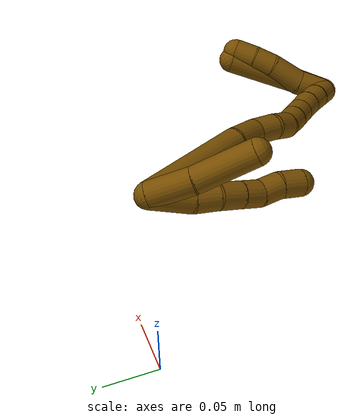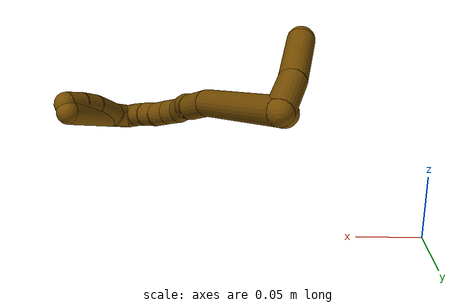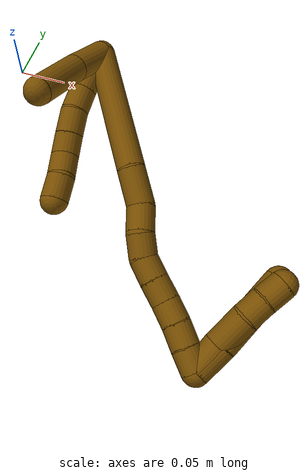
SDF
<sdf version="1.7">
 <world name="default">
  <model name="photoneo_s_sensor">
   <static>1</static>
   <pose>0 0 2 1.57079 1.57079 3.14159</pose>
   <link name="link">
    <inertial><mass>0.1</mass></inertial>
    <sensor name="sensor" type="depth">
     <update_rate>30</update_rate>
     <camera>
      <horizontal_fov>1.22</horizontal_fov>
      <image><width>1920</width><height>1200</height><format>B8G8R8</format></image>
      <clip><near>0.1</near><far>4</far></clip>
      <depth_camera><output>points</output></depth_camera>
     </camera>
     <plugin name="camera_plugin" filename="libgazebo_ros_depth_camera.so">
      <baseline>0.2</baseline>
      <alwaysOn>1</alwaysOn>
      <updateRate>0.0</updateRate>
      <cameraName>camera_ir</cameraName>
      <imageTopicName>/camera/color/image_raw</imageTopicName>
      <cameraInfoTopicName>/camera/color/camera_info</cameraInfoTopicName>
      <depthImageTopicName>/camera/depth/image_raw</depthImageTopicName>
      <depthImageCameraInfoTopicName>/camera/depth/camera_info</depthImageCameraInfoTopicName>
      <pointCloudTopicName>/camera/depth/points</pointCloudTopicName>
      <frameName>fr_optical</frameName>
      <pointCloudCutoff>0.1</pointCloudCutoff>
      <pointCloudCutoffMax>2.0</pointCloudCutoffMax>
      <distortionK1>0</distortionK1>
      <distortionK2>0</distortionK2>
      <distortionK3>0</distortionK3>
      <distortionT1>0</distortionT1>
      <distortionT2>0</distortionT2>
      <CxPrime>0</CxPrime>
      <Cx>0</Cx>
      <Cy>0</Cy>
      <focalLength>0</focalLength>
      <hackBaseline>0</hackBaseline>
     </plugin>
    </sensor>
   </link>
  </model>
  <model name="bin">
   <static>1</static>
   <link name="bottom">
    <collision name="collision-bottom">
     <pose>0 0 -0.01 0 -0 0</pose>
     <geometry><box><size>0.8 0.6 0.02</size></box></geometry>
     <surface>
      <friction><ode><mu>100</mu><mu2>100</mu2></ode></friction>
      <contact><collide_bitmask>65535</collide_bitmask></contact>
     </surface>
    </collision>
   </link>
   <link name="west_wall">
    <collision name="collision-west_wall">
     <pose>-0.41 0 0.1 0 -0 0</pose>
     <geometry><box><size>0.02 0.6 0.2</size></box></geometry>
     <surface>
      <friction><ode><mu>100</mu><mu2>100</mu2></ode></friction>
      <contact><collide_bitmask>65535</collide_bitmask></contact>
     </surface>
    </collision>
   </link>
   <link name="east_wall">
    <collision name="collision-east_wall">
     <pose>0.41 0 0.1 0 -0 0</pose>
     <geometry><box><size>0.02 0.6 0.2</size></box></geometry>
     <surface>
      <friction><ode><mu>100</mu><mu2>100</mu2></ode></friction>
      <contact><collide_bitmask>65535</collide_bitmask></contact>
     </surface>
    </collision>
   </link>
   <link name="south_wall">
    <collision name="collision-south_wall">
     <pose>0 -0.31 0.1 0 -0 0</pose>
     <geometry><box><size>0.8 0.02 0.2</size></box></geometry>
     <surface>
      <friction><ode><mu>100</mu><mu2>100</mu2></ode></friction>
      <contact><collide_bitmask>65535</collide_bitmask></contact>
     </surface>
    </collision>
   </link>
   <link name="north_wall">
    <collision name="collision-north_wall">
     <pose>0 0.31 0.1 0 -0 0</pose>
     <geometry><box><size>0.8 0.02 0.2</size></box></geometry>
     <surface>
      <friction><ode><mu>100</mu><mu2>100</mu2></ode></friction>
      <contact><collide_bitmask>65535</collide_bitmask></contact>
     </surface>
    </collision>
   </link>
  </model>
  <model name="12">
   <static>0</static>
   <link name="12">
    <collision name="collision-cylinder-e_1_2_8">
     <pose>-0.014221 -0.001218 0.014028 0.086586 -0.790366 -0.036136</pose>
     <geometry><cylinder><radius>0.0125</radius><length>0.040025</length></cylinder></geometry>
     <surface>
      <friction><ode><mu>1.16</mu><mu2>1.16</mu2><slip1>0</slip1><slip2>0</slip2></ode></friction>
      <contact><ode><kp>1e+06</kp><kd>1</kd><max_vel>0</max_vel><min_depth>0.001</min_depth></ode></contact>
     </surface>
    </collision>
    <visual name="visual-cylinder-e_1_2_8">
     <pose>-0.014221 -0.001218 0.014028 0.086586 -0.790366 -0.036136</pose>
     <geometry><cylinder><radius>0.0125</radius><length>0.040025</length></cylinder></geometry>
     <material><ambient>0.466667 0.301961 0 1</ambient></material>
    </visual>
    <collision name="collision-cylinder-e_2_8_9">
     <pose>-0.035022 -0.004485 0.037307 0.217983 -0.606935 -0.068504</pose>
     <geometry><cylinder><radius>0.0125</radius><length>0.023074</length></cylinder></geometry>
     <surface>
      <friction><ode><mu>1.16</mu><mu2>1.16</mu2><slip1>0</slip1><slip2>0</slip2></ode></friction>
      <contact><ode><kp>1e+06</kp><kd>1</kd><max_vel>0</max_vel><min_depth>0.001</min_depth></ode></contact>
     </surface>
    </collision>
    <visual name="visual-cylinder-e_2_8_9">
     <pose>-0.035022 -0.004485 0.037307 0.217983 -0.606935 -0.068504</pose>
     <geometry><cylinder><radius>0.0125</radius><length>0.023074</length></cylinder></geometry>
     <material><ambient>0.466667 0.301961 0 1</ambient></material>
    </visual>
    <collision name="collision-cylinder-e_3_9_10">
     <pose>-0.049155 -0.010037 0.054552 0.4131 -0.713434 -0.155856</pose>
     <geometry><cylinder><radius>0.0125</radius><length>0.023083</length></cylinder></geometry>
     <surface>
      <friction><ode><mu>1.16</mu><mu2>1.16</mu2><slip1>0</slip1><slip2>0</slip2></ode></friction>
      <contact><ode><kp>1e+06</kp><kd>1</kd><max_vel>0</max_vel><min_depth>0.001</min_depth></ode></contact>
     </surface>
    </collision>
    <visual name="visual-cylinder-e_3_9_10">
     <pose>-0.049155 -0.010037 0.054552 0.4131 -0.713434 -0.155856</pose>
     <geometry><cylinder><radius>0.0125</radius><length>0.023083</length></cylinder></geometry>
     <material><ambient>0.466667 0.301961 0 1</ambient></material>
    </visual>
    <collision name="collision-cylinder-e_4_10_11">
     <pose>-0.063501 -0.016859 0.069298 0.456667 -0.734271 -0.178265</pose>
     <geometry><cylinder><radius>0.0125</radius><length>0.020274</length></cylinder></geometry>
     <surface>
      <friction><ode><mu>1.16</mu><mu2>1.16</mu2><slip1>0</slip1><slip2>0</slip2></ode></friction>
      <contact><ode><kp>1e+06</kp><kd>1</kd><max_vel>0</max_vel><min_depth>0.001</min_depth></ode></contact>
     </surface>
    </collision>
    <visual name="visual-cylinder-e_4_10_11">
     <pose>-0.063501 -0.016859 0.069298 0.456667 -0.734271 -0.178265</pose>
     <geometry><cylinder><radius>0.0125</radius><length>0.020274</length></cylinder></geometry>
     <material><ambient>0.466667 0.301961 0 1</ambient></material>
    </visual>
    <collision name="collision-cylinder-e_5_11_12">
     <pose>-0.074533 -0.023961 0.085048 0.398178 -0.409847 -0.08382</pose>
     <geometry><cylinder><radius>0.0125</radius><length>0.021281</length></cylinder></geometry>
     <surface>
      <friction><ode><mu>1.16</mu><mu2>1.16</mu2><slip1>0</slip1><slip2>0</slip2></ode></friction>
      <contact><ode><kp>1e+06</kp><kd>1</kd><max_vel>0</max_vel><min_depth>0.001</min_depth></ode></contact>
     </surface>
    </collision>
    <visual name="visual-cylinder-e_5_11_12">
     <pose>-0.074533 -0.023961 0.085048 0.398178 -0.409847 -0.08382</pose>
     <geometry><cylinder><radius>0.0125</radius><length>0.021281</length></cylinder></geometry>
     <material><ambient>0.466667 0.301961 0 1</ambient></material>
    </visual>
    <collision name="collision-cylinder-e_6_12_6">
     <pose>-0.085569 -0.030631 0.102375 0.333472 -0.656677 -0.114543</pose>
     <geometry><cylinder><radius>0.0125</radius><length>0.022264</length></cylinder></geometry>
     <surface>
      <friction><ode><mu>1.16</mu><mu2>1.16</mu2><slip1>0</slip1><slip2>0</slip2></ode></friction>
      <contact><ode><kp>1e+06</kp><kd>1</kd><max_vel>0</max_vel><min_depth>0.001</min_depth></ode></contact>
     </surface>
    </collision>
    <visual name="visual-cylinder-e_6_12_6">
     <pose>-0.085569 -0.030631 0.102375 0.333472 -0.656677 -0.114543</pose>
     <geometry><cylinder><radius>0.0125</radius><length>0.022264</length></cylinder></geometry>
     <material><ambient>0.466667 0.301961 0 1</ambient></material>
    </visual>
    <collision name="collision-cylinder-e_1_2_13">
     <pose>-0.002683 0.004203 0.020321 -0.203955 -0.128582 0.013176</pose>
     <geometry><cylinder><radius>0.0125</radius><length>0.041847</length></cylinder></geometry>
     <surface>
      <friction><ode><mu>1.16</mu><mu2>1.16</mu2><slip1>0</slip1><slip2>0</slip2></ode></friction>
      <contact><ode><kp>1e+06</kp><kd>1</kd><max_vel>0</max_vel><min_depth>0.001</min_depth></ode></contact>
     </surface>
    </collision>
    <visual name="visual-cylinder-e_1_2_13">
     <pose>-0.002683 0.004203 0.020321 -0.203955 -0.128582 0.013176</pose>
     <geometry><cylinder><radius>0.0125</radius><length>0.041847</length></cylinder></geometry>
     <material><ambient>0.466667 0.301961 0 1</ambient></material>
    </visual>
    <collision name="collision-cylinder-e_2_13_5">
     <pose>-0.00737 0.011368 0.069497 -0.102277 -0.068982 0.003532</pose>
     <geometry><cylinder><radius>0.0125</radius><length>0.058153</length></cylinder></geometry>
     <surface>
      <friction><ode><mu>1.16</mu><mu2>1.16</mu2><slip1>0</slip1><slip2>0</slip2></ode></friction>
      <contact><ode><kp>1e+06</kp><kd>1</kd><max_vel>0</max_vel><min_depth>0.001</min_depth></ode></contact>
     </surface>
    </collision>
    <visual name="visual-cylinder-e_2_13_5">
     <pose>-0.00737 0.011368 0.069497 -0.102277 -0.068982 0.003532</pose>
     <geometry><cylinder><radius>0.0125</radius><length>0.058153</length></cylinder></geometry>
     <material><ambient>0.466667 0.301961 0 1</ambient></material>
    </visual>
    <collision name="collision-cylinder-e_1_2_14">
     <pose>-0.023705 -0.039793 0.038799 0.798039 -0.40316 -0.171903</pose>
     <geometry><cylinder><radius>0.0125</radius><length>0.120842</length></cylinder></geometry>
     <surface>
      <friction><ode><mu>1.16</mu><mu2>1.16</mu2><slip1>0</slip1><slip2>0</slip2></ode></friction>
      <contact><ode><kp>1e+06</kp><kd>1</kd><max_vel>0</max_vel><min_depth>0.001</min_depth></ode></contact>
     </surface>
    </collision>
    <visual name="visual-cylinder-e_1_2_14">
     <pose>-0.023705 -0.039793 0.038799 0.798039 -0.40316 -0.171903</pose>
     <geometry><cylinder><radius>0.0125</radius><length>0.120842</length></cylinder></geometry>
     <material><ambient>0.466667 0.301961 0 1</ambient></material>
    </visual>
    <collision name="collision-cylinder-e_2_14_15">
     <pose>-0.056014 -0.091124 0.086494 0.913985 -0.533449 -0.267105</pose>
     <geometry><cylinder><radius>0.0125</radius><length>0.033842</length></cylinder></geometry>
     <surface>
      <friction><ode><mu>1.16</mu><mu2>1.16</mu2><slip1>0</slip1><slip2>0</slip2></ode></friction>
      <contact><ode><kp>1e+06</kp><kd>1</kd><max_vel>0</max_vel><min_depth>0.001</min_depth></ode></contact>
     </surface>
    </collision>
    <visual name="visual-cylinder-e_2_14_15">
     <pose>-0.056014 -0.091124 0.086494 0.913985 -0.533449 -0.267105</pose>
     <geometry><cylinder><radius>0.0125</radius><length>0.033842</length></cylinder></geometry>
     <material><ambient>0.466667 0.301961 0 1</ambient></material>
    </visual>
    <collision name="collision-cylinder-e_3_15_16">
     <pose>-0.070877 -0.107881 0.103895 0.550357 -0.560203 -0.162083</pose>
     <geometry><cylinder><radius>0.0125</radius><length>0.023556</length></cylinder></geometry>
     <surface>
      <friction><ode><mu>1.16</mu><mu2>1.16</mu2><slip1>0</slip1><slip2>0</slip2></ode></friction>
      <contact><ode><kp>1e+06</kp><kd>1</kd><max_vel>0</max_vel><min_depth>0.001</min_depth></ode></contact>
     </surface>
    </collision>
    <visual name="visual-cylinder-e_3_15_16">
     <pose>-0.070877 -0.107881 0.103895 0.550357 -0.560203 -0.162083</pose>
     <geometry><cylinder><radius>0.0125</radius><length>0.023556</length></cylinder></geometry>
     <material><ambient>0.466667 0.301961 0 1</ambient></material>
    </visual>
    <collision name="collision-cylinder-e_4_16_17">
     <pose>-0.084012 -0.119336 0.117679 0.868385 -0.699543 -0.335119</pose>
     <geometry><cylinder><radius>0.0125</radius><length>0.02136</length></cylinder></geometry>
     <surface>
      <friction><ode><mu>1.16</mu><mu2>1.16</mu2><slip1>0</slip1><slip2>0</slip2></ode></friction>
      <contact><ode><kp>1e+06</kp><kd>1</kd><max_vel>0</max_vel><min_depth>0.001</min_depth></ode></contact>
     </surface>
    </collision>
    <visual name="visual-cylinder-e_4_16_17">
     <pose>-0.084012 -0.119336 0.117679 0.868385 -0.699543 -0.335119</pose>
     <geometry><cylinder><radius>0.0125</radius><length>0.02136</length></cylinder></geometry>
     <material><ambient>0.466667 0.301961 0 1</ambient></material>
    </visual>
    <collision name="collision-cylinder-e_5_17_18">
     <pose>-0.094813 -0.133721 0.127367 1.07483 -0.400681 -0.240849</pose>
     <geometry><cylinder><radius>0.0125</radius><length>0.020121</length></cylinder></geometry>
     <surface>
      <friction><ode><mu>1.16</mu><mu2>1.16</mu2><slip1>0</slip1><slip2>0</slip2></ode></friction>
      <contact><ode><kp>1e+06</kp><kd>1</kd><max_vel>0</max_vel><min_depth>0.001</min_depth></ode></contact>
     </surface>
    </collision>
    <visual name="visual-cylinder-e_5_17_18">
     <pose>-0.094813 -0.133721 0.127367 1.07483 -0.400681 -0.240849</pose>
     <geometry><cylinder><radius>0.0125</radius><length>0.020121</length></cylinder></geometry>
     <material><ambient>0.466667 0.301961 0 1</ambient></material>
    </visual>
    <collision name="collision-cylinder-e_6_18_19">
     <pose>-0.102575 -0.150311 0.135846 1.12147 -0.388677 -0.245951</pose>
     <geometry><cylinder><radius>0.0125</radius><length>0.020256</length></cylinder></geometry>
     <surface>
      <friction><ode><mu>1.16</mu><mu2>1.16</mu2><slip1>0</slip1><slip2>0</slip2></ode></friction>
      <contact><ode><kp>1e+06</kp><kd>1</kd><max_vel>0</max_vel><min_depth>0.001</min_depth></ode></contact>
     </surface>
    </collision>
    <visual name="visual-cylinder-e_6_18_19">
     <pose>-0.102575 -0.150311 0.135846 1.12147 -0.388677 -0.245951</pose>
     <geometry><cylinder><radius>0.0125</radius><length>0.020256</length></cylinder></geometry>
     <material><ambient>0.466667 0.301961 0 1</ambient></material>
    </visual>
    <collision name="collision-cylinder-e_7_19_20">
     <pose>-0.109651 -0.166735 0.144999 1.00392 -0.329713 -0.182115</pose>
     <geometry><cylinder><radius>0.0125</radius><length>0.020002</length></cylinder></geometry>
     <surface>
      <friction><ode><mu>1.16</mu><mu2>1.16</mu2><slip1>0</slip1><slip2>0</slip2></ode></friction>
      <contact><ode><kp>1e+06</kp><kd>1</kd><max_vel>0</max_vel><min_depth>0.001</min_depth></ode></contact>
     </surface>
    </collision>
    <visual name="visual-cylinder-e_7_19_20">
     <pose>-0.109651 -0.166735 0.144999 1.00392 -0.329713 -0.182115</pose>
     <geometry><cylinder><radius>0.0125</radius><length>0.020002</length></cylinder></geometry>
     <material><ambient>0.466667 0.301961 0 1</ambient></material>
    </visual>
    <collision name="collision-cylinder-e_8_20_21">
     <pose>-0.11682 -0.182289 0.155298 0.967377 -0.403998 -0.214333</pose>
     <geometry><cylinder><radius>0.0125</radius><length>0.020003</length></cylinder></geometry>
     <surface>
      <friction><ode><mu>1.16</mu><mu2>1.16</mu2><slip1>0</slip1><slip2>0</slip2></ode></friction>
      <contact><ode><kp>1e+06</kp><kd>1</kd><max_vel>0</max_vel><min_depth>0.001</min_depth></ode></contact>
     </surface>
    </collision>
    <visual name="visual-cylinder-e_8_20_21">
     <pose>-0.11682 -0.182289 0.155298 0.967377 -0.403998 -0.214333</pose>
     <geometry><cylinder><radius>0.0125</radius><length>0.020003</length></cylinder></geometry>
     <material><ambient>0.466667 0.301961 0 1</ambient></material>
    </visual>
    <collision name="collision-cylinder-e_9_21_1">
     <pose>-0.124943 -0.19768 0.165152 1.0356 -0.432058 -0.248729</pose>
     <geometry><cylinder><radius>0.0125</radius><length>0.020018</length></cylinder></geometry>
     <surface>
      <friction><ode><mu>1.16</mu><mu2>1.16</mu2><slip1>0</slip1><slip2>0</slip2></ode></friction>
      <contact><ode><kp>1e+06</kp><kd>1</kd><max_vel>0</max_vel><min_depth>0.001</min_depth></ode></contact>
     </surface>
    </collision>
    <visual name="visual-cylinder-e_9_21_1">
     <pose>-0.124943 -0.19768 0.165152 1.0356 -0.432058 -0.248729</pose>
     <geometry><cylinder><radius>0.0125</radius><length>0.020018</length></cylinder></geometry>
     <material><ambient>0.466667 0.301961 0 1</ambient></material>
    </visual>
    <collision name="collision-cylinder-e_1_1_22">
     <pose>-0.118653 -0.21026 0.160547 2.66578 0.789485 2.08731</pose>
     <geometry><cylinder><radius>0.0125</radius><length>0.029524</length></cylinder></geometry>
     <surface>
      <friction><ode><mu>1.16</mu><mu2>1.16</mu2><slip1>0</slip1><slip2>0</slip2></ode></friction>
      <contact><ode><kp>1e+06</kp><kd>1</kd><max_vel>0</max_vel><min_depth>0.001</min_depth></ode></contact>
     </surface>
    </collision>
    <visual name="visual-cylinder-e_1_1_22">
     <pose>-0.118653 -0.21026 0.160547 2.66578 0.789485 2.08731</pose>
     <geometry><cylinder><radius>0.0125</radius><length>0.029524</length></cylinder></geometry>
     <material><ambient>0.466667 0.301961 0 1</ambient></material>
    </visual>
    <collision name="collision-cylinder-e_2_22_4">
     <pose>-0.082762 -0.223641 0.128465 2.78073 0.805406 2.33241</pose>
     <geometry><cylinder><radius>0.0125</radius><length>0.070476</length></cylinder></geometry>
     <surface>
      <friction><ode><mu>1.16</mu><mu2>1.16</mu2><slip1>0</slip1><slip2>0</slip2></ode></friction>
      <contact><ode><kp>1e+06</kp><kd>1</kd><max_vel>0</max_vel><min_depth>0.001</min_depth></ode></contact>
     </surface>
    </collision>
    <visual name="visual-cylinder-e_2_22_4">
     <pose>-0.082762 -0.223641 0.128465 2.78073 0.805406 2.33241</pose>
     <geometry><cylinder><radius>0.0125</radius><length>0.070476</length></cylinder></geometry>
     <material><ambient>0.466667 0.301961 0 1</ambient></material>
    </visual>
    <collision name="collision-cylinder-e_1_1_23">
     <pose>-0.118918 -0.208555 0.160956 2.80834 0.829806 2.4121</pose>
     <geometry><cylinder><radius>0.0125</radius><length>0.027693</length></cylinder></geometry>
     <surface>
      <friction><ode><mu>1.16</mu><mu2>1.16</mu2><slip1>0</slip1><slip2>0</slip2></ode></friction>
      <contact><ode><kp>1e+06</kp><kd>1</kd><max_vel>0</max_vel><min_depth>0.001</min_depth></ode></contact>
     </surface>
    </collision>
    <visual name="visual-cylinder-e_1_1_23">
     <pose>-0.118918 -0.208555 0.160956 2.80834 0.829806 2.4121</pose>
     <geometry><cylinder><radius>0.0125</radius><length>0.027693</length></cylinder></geometry>
     <material><ambient>0.466667 0.301961 0 1</ambient></material>
    </visual>
    <collision name="collision-cylinder-e_2_23_24">
     <pose>-0.095063 -0.21574 0.145036 2.61425 1.02941 2.25089</pose>
     <geometry><cylinder><radius>0.0125</radius><length>0.031831</length></cylinder></geometry>
     <surface>
      <friction><ode><mu>1.16</mu><mu2>1.16</mu2><slip1>0</slip1><slip2>0</slip2></ode></friction>
      <contact><ode><kp>1e+06</kp><kd>1</kd><max_vel>0</max_vel><min_depth>0.001</min_depth></ode></contact>
     </surface>
    </collision>
    <visual name="visual-cylinder-e_2_23_24">
     <pose>-0.095063 -0.21574 0.145036 2.61425 1.02941 2.25089</pose>
     <geometry><cylinder><radius>0.0125</radius><length>0.031831</length></cylinder></geometry>
     <material><ambient>0.466667 0.301961 0 1</ambient></material>
    </visual>
    <collision name="collision-cylinder-e_3_24_25">
     <pose>-0.073868 -0.223335 0.132245 2.59528 0.847223 2.0297</pose>
     <geometry><cylinder><radius>0.0125</radius><length>0.020163</length></cylinder></geometry>
     <surface>
      <friction><ode><mu>1.16</mu><mu2>1.16</mu2><slip1>0</slip1><slip2>0</slip2></ode></friction>
      <contact><ode><kp>1e+06</kp><kd>1</kd><max_vel>0</max_vel><min_depth>0.001</min_depth></ode></contact>
     </surface>
    </collision>
    <visual name="visual-cylinder-e_3_24_25">
     <pose>-0.073868 -0.223335 0.132245 2.59528 0.847223 2.0297</pose>
     <geometry><cylinder><radius>0.0125</radius><length>0.020163</length></cylinder></geometry>
     <material><ambient>0.466667 0.301961 0 1</ambient></material>
    </visual>
    <collision name="collision-cylinder-e_4_25_3">
     <pose>-0.059541 -0.230823 0.120127 2.58172 0.729696 1.85117</pose>
     <geometry><cylinder><radius>0.0125</radius><length>0.020313</length></cylinder></geometry>
     <surface>
      <friction><ode><mu>1.16</mu><mu2>1.16</mu2><slip1>0</slip1><slip2>0</slip2></ode></friction>
      <contact><ode><kp>1e+06</kp><kd>1</kd><max_vel>0</max_vel><min_depth>0.001</min_depth></ode></contact>
     </surface>
    </collision>
    <visual name="visual-cylinder-e_4_25_3">
     <pose>-0.059541 -0.230823 0.120127 2.58172 0.729696 1.85117</pose>
     <geometry><cylinder><radius>0.0125</radius><length>0.020313</length></cylinder></geometry>
     <material><ambient>0.466667 0.301961 0 1</ambient></material>
    </visual>
    <collision name="collision-sphere-3">
     <pose>-0.052771 -0.234844 0.113713 0 -0 0</pose>
     <geometry><sphere><radius>0.0125</radius></sphere></geometry>
     <surface>
      <friction><ode><mu>1.16</mu><mu2>1.16</mu2><slip1>0</slip1><slip2>0</slip2></ode></friction>
      <contact><ode><kp>1e+06</kp><kd>1</kd><max_vel>0</max_vel><min_depth>0.001</min_depth></ode></contact>
     </surface>
    </collision>
    <visual name="visual-sphere-3">
     <pose>-0.052771 -0.234844 0.113713 0 -0 0</pose>
     <geometry><sphere><radius>0.0125</radius></sphere></geometry>
     <material><ambient>0.466667 0.301961 0 1</ambient></material>
    </visual>
    <collision name="collision-sphere-25">
     <pose>-0.066312 -0.226803 0.126542 0 -0 0</pose>
     <geometry><sphere><radius>0.0125</radius></sphere></geometry>
     <surface>
      <friction><ode><mu>1.16</mu><mu2>1.16</mu2><slip1>0</slip1><slip2>0</slip2></ode></friction>
      <contact><ode><kp>1e+06</kp><kd>1</kd><max_vel>0</max_vel><min_depth>0.001</min_depth></ode></contact>
     </surface>
    </collision>
    <visual name="visual-sphere-25">
     <pose>-0.066312 -0.226803 0.126542 0 -0 0</pose>
     <geometry><sphere><radius>0.0125</radius></sphere></geometry>
     <material><ambient>0.466667 0.301961 0 1</ambient></material>
    </visual>
    <collision name="collision-sphere-24">
     <pose>-0.081423 -0.219868 0.137948 0 -0 0</pose>
     <geometry><sphere><radius>0.0125</radius></sphere></geometry>
     <surface>
      <friction><ode><mu>1.16</mu><mu2>1.16</mu2><slip1>0</slip1><slip2>0</slip2></ode></friction>
      <contact><ode><kp>1e+06</kp><kd>1</kd><max_vel>0</max_vel><min_depth>0.001</min_depth></ode></contact>
     </surface>
    </collision>
    <visual name="visual-sphere-24">
     <pose>-0.081423 -0.219868 0.137948 0 -0 0</pose>
     <geometry><sphere><radius>0.0125</radius></sphere></geometry>
     <material><ambient>0.466667 0.301961 0 1</ambient></material>
    </visual>
    <collision name="collision-sphere-23">
     <pose>-0.108702 -0.211613 0.152123 0 -0 0</pose>
     <geometry><sphere><radius>0.0125</radius></sphere></geometry>
     <surface>
      <friction><ode><mu>1.16</mu><mu2>1.16</mu2><slip1>0</slip1><slip2>0</slip2></ode></friction>
      <contact><ode><kp>1e+06</kp><kd>1</kd><max_vel>0</max_vel><min_depth>0.001</min_depth></ode></contact>
     </surface>
    </collision>
    <visual name="visual-sphere-23">
     <pose>-0.108702 -0.211613 0.152123 0 -0 0</pose>
     <geometry><sphere><radius>0.0125</radius></sphere></geometry>
     <material><ambient>0.466667 0.301961 0 1</ambient></material>
    </visual>
    <collision name="collision-sphere-4">
     <pose>-0.057351 -0.232261 0.105624 0 -0 0</pose>
     <geometry><sphere><radius>0.0125</radius></sphere></geometry>
     <surface>
      <friction><ode><mu>1.16</mu><mu2>1.16</mu2><slip1>0</slip1><slip2>0</slip2></ode></friction>
      <contact><ode><kp>1e+06</kp><kd>1</kd><max_vel>0</max_vel><min_depth>0.001</min_depth></ode></contact>
     </surface>
    </collision>
    <visual name="visual-sphere-4">
     <pose>-0.057351 -0.232261 0.105624 0 -0 0</pose>
     <geometry><sphere><radius>0.0125</radius></sphere></geometry>
     <material><ambient>0.466667 0.301961 0 1</ambient></material>
    </visual>
    <collision name="collision-sphere-22">
     <pose>-0.108172 -0.215022 0.151306 0 -0 0</pose>
     <geometry><sphere><radius>0.0125</radius></sphere></geometry>
     <surface>
      <friction><ode><mu>1.16</mu><mu2>1.16</mu2><slip1>0</slip1><slip2>0</slip2></ode></friction>
      <contact><ode><kp>1e+06</kp><kd>1</kd><max_vel>0</max_vel><min_depth>0.001</min_depth></ode></contact>
     </surface>
    </collision>
    <visual name="visual-sphere-22">
     <pose>-0.108172 -0.215022 0.151306 0 -0 0</pose>
     <geometry><sphere><radius>0.0125</radius></sphere></geometry>
     <material><ambient>0.466667 0.301961 0 1</ambient></material>
    </visual>
    <collision name="collision-sphere-1">
     <pose>-0.129134 -0.205498 0.169788 0 -0 0</pose>
     <geometry><sphere><radius>0.0125</radius></sphere></geometry>
     <surface>
      <friction><ode><mu>1.16</mu><mu2>1.16</mu2><slip1>0</slip1><slip2>0</slip2></ode></friction>
      <contact><ode><kp>1e+06</kp><kd>1</kd><max_vel>0</max_vel><min_depth>0.001</min_depth></ode></contact>
     </surface>
    </collision>
    <visual name="visual-sphere-1">
     <pose>-0.129134 -0.205498 0.169788 0 -0 0</pose>
     <geometry><sphere><radius>0.0125</radius></sphere></geometry>
     <material><ambient>0.466667 0.301961 0 1</ambient></material>
    </visual>
    <collision name="collision-sphere-21">
     <pose>-0.120752 -0.189861 0.160517 0 -0 0</pose>
     <geometry><sphere><radius>0.0125</radius></sphere></geometry>
     <surface>
      <friction><ode><mu>1.16</mu><mu2>1.16</mu2><slip1>0</slip1><slip2>0</slip2></ode></friction>
      <contact><ode><kp>1e+06</kp><kd>1</kd><max_vel>0</max_vel><min_depth>0.001</min_depth></ode></contact>
     </surface>
    </collision>
    <visual name="visual-sphere-21">
     <pose>-0.120752 -0.189861 0.160517 0 -0 0</pose>
     <geometry><sphere><radius>0.0125</radius></sphere></geometry>
     <material><ambient>0.466667 0.301961 0 1</ambient></material>
    </visual>
    <collision name="collision-sphere-12">
     <pose>-0.078773 -0.027745 0.094044 0 -0 0</pose>
     <geometry><sphere><radius>0.0125</radius></sphere></geometry>
     <surface>
      <friction><ode><mu>1.16</mu><mu2>1.16</mu2><slip1>0</slip1><slip2>0</slip2></ode></friction>
      <contact><ode><kp>1e+06</kp><kd>1</kd><max_vel>0</max_vel><min_depth>0.001</min_depth></ode></contact>
     </surface>
    </collision>
    <visual name="visual-sphere-12">
     <pose>-0.078773 -0.027745 0.094044 0 -0 0</pose>
     <geometry><sphere><radius>0.0125</radius></sphere></geometry>
     <material><ambient>0.466667 0.301961 0 1</ambient></material>
    </visual>
    <collision name="collision-sphere-11">
     <pose>-0.070293 -0.020177 0.076052 0 -0 0</pose>
     <geometry><sphere><radius>0.0125</radius></sphere></geometry>
     <surface>
      <friction><ode><mu>1.16</mu><mu2>1.16</mu2><slip1>0</slip1><slip2>0</slip2></ode></friction>
      <contact><ode><kp>1e+06</kp><kd>1</kd><max_vel>0</max_vel><min_depth>0.001</min_depth></ode></contact>
     </surface>
    </collision>
    <visual name="visual-sphere-11">
     <pose>-0.070293 -0.020177 0.076052 0 -0 0</pose>
     <geometry><sphere><radius>0.0125</radius></sphere></geometry>
     <material><ambient>0.466667 0.301961 0 1</ambient></material>
    </visual>
    <collision name="collision-sphere-10">
     <pose>-0.056708 -0.013541 0.062545 0 -0 0</pose>
     <geometry><sphere><radius>0.0125</radius></sphere></geometry>
     <surface>
      <friction><ode><mu>1.16</mu><mu2>1.16</mu2><slip1>0</slip1><slip2>0</slip2></ode></friction>
      <contact><ode><kp>1e+06</kp><kd>1</kd><max_vel>0</max_vel><min_depth>0.001</min_depth></ode></contact>
     </surface>
    </collision>
    <visual name="visual-sphere-10">
     <pose>-0.056708 -0.013541 0.062545 0 -0 0</pose>
     <geometry><sphere><radius>0.0125</radius></sphere></geometry>
     <material><ambient>0.466667 0.301961 0 1</ambient></material>
    </visual>
    <collision name="collision-sphere-9">
     <pose>-0.041602 -0.006534 0.04656 0 -0 0</pose>
     <geometry><sphere><radius>0.0125</radius></sphere></geometry>
     <surface>
      <friction><ode><mu>1.16</mu><mu2>1.16</mu2><slip1>0</slip1><slip2>0</slip2></ode></friction>
      <contact><ode><kp>1e+06</kp><kd>1</kd><max_vel>0</max_vel><min_depth>0.001</min_depth></ode></contact>
     </surface>
    </collision>
    <visual name="visual-sphere-9">
     <pose>-0.041602 -0.006534 0.04656 0 -0 0</pose>
     <geometry><sphere><radius>0.0125</radius></sphere></geometry>
     <material><ambient>0.466667 0.301961 0 1</ambient></material>
    </visual>
    <collision name="collision-sphere-2">
     <geometry><sphere><radius>0.0125</radius></sphere></geometry>
     <surface>
      <friction><ode><mu>1.16</mu><mu2>1.16</mu2><slip1>0</slip1><slip2>0</slip2></ode></friction>
      <contact><ode><kp>1e+06</kp><kd>1</kd><max_vel>0</max_vel><min_depth>0.001</min_depth></ode></contact>
     </surface>
    </collision>
    <visual name="visual-sphere-2">
     <geometry><sphere><radius>0.0125</radius></sphere></geometry>
     <material><ambient>0.466667 0.301961 0 1</ambient></material>
    </visual>
    <collision name="collision-sphere-19">
     <pose>-0.106413 -0.158753 0.139917 0 -0 0</pose>
     <geometry><sphere><radius>0.0125</radius></sphere></geometry>
     <surface>
      <friction><ode><mu>1.16</mu><mu2>1.16</mu2><slip1>0</slip1><slip2>0</slip2></ode></friction>
      <contact><ode><kp>1e+06</kp><kd>1</kd><max_vel>0</max_vel><min_depth>0.001</min_depth></ode></contact>
     </surface>
    </collision>
    <visual name="visual-sphere-19">
     <pose>-0.106413 -0.158753 0.139917 0 -0 0</pose>
     <geometry><sphere><radius>0.0125</radius></sphere></geometry>
     <material><ambient>0.466667 0.301961 0 1</ambient></material>
    </visual>
    <collision name="collision-sphere-8">
     <pose>-0.028442 -0.002435 0.028055 0 -0 0</pose>
     <geometry><sphere><radius>0.0125</radius></sphere></geometry>
     <surface>
      <friction><ode><mu>1.16</mu><mu2>1.16</mu2><slip1>0</slip1><slip2>0</slip2></ode></friction>
      <contact><ode><kp>1e+06</kp><kd>1</kd><max_vel>0</max_vel><min_depth>0.001</min_depth></ode></contact>
     </surface>
    </collision>
    <visual name="visual-sphere-8">
     <pose>-0.028442 -0.002435 0.028055 0 -0 0</pose>
     <geometry><sphere><radius>0.0125</radius></sphere></geometry>
     <material><ambient>0.466667 0.301961 0 1</ambient></material>
    </visual>
    <collision name="collision-sphere-6">
     <pose>-0.092364 -0.033517 0.110706 0 -0 0</pose>
     <geometry><sphere><radius>0.0125</radius></sphere></geometry>
     <surface>
      <friction><ode><mu>1.16</mu><mu2>1.16</mu2><slip1>0</slip1><slip2>0</slip2></ode></friction>
      <contact><ode><kp>1e+06</kp><kd>1</kd><max_vel>0</max_vel><min_depth>0.001</min_depth></ode></contact>
     </surface>
    </collision>
    <visual name="visual-sphere-6">
     <pose>-0.092364 -0.033517 0.110706 0 -0 0</pose>
     <geometry><sphere><radius>0.0125</radius></sphere></geometry>
     <material><ambient>0.466667 0.301961 0 1</ambient></material>
    </visual>
    <collision name="collision-sphere-13">
     <pose>-0.005366 0.008406 0.040642 0 -0 0</pose>
     <geometry><sphere><radius>0.0125</radius></sphere></geometry>
     <surface>
      <friction><ode><mu>1.16</mu><mu2>1.16</mu2><slip1>0</slip1><slip2>0</slip2></ode></friction>
      <contact><ode><kp>1e+06</kp><kd>1</kd><max_vel>0</max_vel><min_depth>0.001</min_depth></ode></contact>
     </surface>
    </collision>
    <visual name="visual-sphere-13">
     <pose>-0.005366 0.008406 0.040642 0 -0 0</pose>
     <geometry><sphere><radius>0.0125</radius></sphere></geometry>
     <material><ambient>0.466667 0.301961 0 1</ambient></material>
    </visual>
    <collision name="collision-sphere-5">
     <pose>-0.009374 0.014329 0.098353 0 -0 0</pose>
     <geometry><sphere><radius>0.0125</radius></sphere></geometry>
     <surface>
      <friction><ode><mu>1.16</mu><mu2>1.16</mu2><slip1>0</slip1><slip2>0</slip2></ode></friction>
      <contact><ode><kp>1e+06</kp><kd>1</kd><max_vel>0</max_vel><min_depth>0.001</min_depth></ode></contact>
     </surface>
    </collision>
    <visual name="visual-sphere-5">
     <pose>-0.009374 0.014329 0.098353 0 -0 0</pose>
     <geometry><sphere><radius>0.0125</radius></sphere></geometry>
     <material><ambient>0.466667 0.301961 0 1</ambient></material>
    </visual>
    <collision name="collision-sphere-14">
     <pose>-0.04741 -0.079585 0.077598 0 -0 0</pose>
     <geometry><sphere><radius>0.0125</radius></sphere></geometry>
     <surface>
      <friction><ode><mu>1.16</mu><mu2>1.16</mu2><slip1>0</slip1><slip2>0</slip2></ode></friction>
      <contact><ode><kp>1e+06</kp><kd>1</kd><max_vel>0</max_vel><min_depth>0.001</min_depth></ode></contact>
     </surface>
    </collision>
    <visual name="visual-sphere-14">
     <pose>-0.04741 -0.079585 0.077598 0 -0 0</pose>
     <geometry><sphere><radius>0.0125</radius></sphere></geometry>
     <material><ambient>0.466667 0.301961 0 1</ambient></material>
    </visual>
    <collision name="collision-sphere-15">
     <pose>-0.064619 -0.102662 0.095391 0 -0 0</pose>
     <geometry><sphere><radius>0.0125</radius></sphere></geometry>
     <surface>
      <friction><ode><mu>1.16</mu><mu2>1.16</mu2><slip1>0</slip1><slip2>0</slip2></ode></friction>
      <contact><ode><kp>1e+06</kp><kd>1</kd><max_vel>0</max_vel><min_depth>0.001</min_depth></ode></contact>
     </surface>
    </collision>
    <visual name="visual-sphere-15">
     <pose>-0.064619 -0.102662 0.095391 0 -0 0</pose>
     <geometry><sphere><radius>0.0125</radius></sphere></geometry>
     <material><ambient>0.466667 0.301961 0 1</ambient></material>
    </visual>
    <collision name="collision-sphere-16">
     <pose>-0.077135 -0.113099 0.1124 0 -0 0</pose>
     <geometry><sphere><radius>0.0125</radius></sphere></geometry>
     <surface>
      <friction><ode><mu>1.16</mu><mu2>1.16</mu2><slip1>0</slip1><slip2>0</slip2></ode></friction>
      <contact><ode><kp>1e+06</kp><kd>1</kd><max_vel>0</max_vel><min_depth>0.001</min_depth></ode></contact>
     </surface>
    </collision>
    <visual name="visual-sphere-16">
     <pose>-0.077135 -0.113099 0.1124 0 -0 0</pose>
     <geometry><sphere><radius>0.0125</radius></sphere></geometry>
     <material><ambient>0.466667 0.301961 0 1</ambient></material>
    </visual>
    <collision name="collision-sphere-17">
     <pose>-0.090889 -0.125574 0.122959 0 -0 0</pose>
     <geometry><sphere><radius>0.0125</radius></sphere></geometry>
     <surface>
      <friction><ode><mu>1.16</mu><mu2>1.16</mu2><slip1>0</slip1><slip2>0</slip2></ode></friction>
      <contact><ode><kp>1e+06</kp><kd>1</kd><max_vel>0</max_vel><min_depth>0.001</min_depth></ode></contact>
     </surface>
    </collision>
    <visual name="visual-sphere-17">
     <pose>-0.090889 -0.125574 0.122959 0 -0 0</pose>
     <geometry><sphere><radius>0.0125</radius></sphere></geometry>
     <material><ambient>0.466667 0.301961 0 1</ambient></material>
    </visual>
    <collision name="collision-sphere-18">
     <pose>-0.098737 -0.141868 0.131775 0 -0 0</pose>
     <geometry><sphere><radius>0.0125</radius></sphere></geometry>
     <surface>
      <friction><ode><mu>1.16</mu><mu2>1.16</mu2><slip1>0</slip1><slip2>0</slip2></ode></friction>
      <contact><ode><kp>1e+06</kp><kd>1</kd><max_vel>0</max_vel><min_depth>0.001</min_depth></ode></contact>
     </surface>
    </collision>
    <visual name="visual-sphere-18">
     <pose>-0.098737 -0.141868 0.131775 0 -0 0</pose>
     <geometry><sphere><radius>0.0125</radius></sphere></geometry>
     <material><ambient>0.466667 0.301961 0 1</ambient></material>
    </visual>
    <collision name="collision-sphere-20">
     <pose>-0.112889 -0.174717 0.15008 0 -0 0</pose>
     <geometry><sphere><radius>0.0125</radius></sphere></geometry>
     <surface>
      <friction><ode><mu>1.16</mu><mu2>1.16</mu2><slip1>0</slip1><slip2>0</slip2></ode></friction>
      <contact><ode><kp>1e+06</kp><kd>1</kd><max_vel>0</max_vel><min_depth>0.001</min_depth></ode></contact>
     </surface>
    </collision>
    <visual name="visual-sphere-20">
     <pose>-0.112889 -0.174717 0.15008 0 -0 0</pose>
     <geometry><sphere><radius>0.0125</radius></sphere></geometry>
     <material><ambient>0.466667 0.301961 0 1</ambient></material>
    </visual>
    <inertial>
     <pose>-0.060568 -0.099388 0.090994 0 -0 0</pose>
     <mass>0.75</mass>
     <inertia>
      <ixx>0.000157</ixx>
      <ixy>0</ixy>
      <ixz>0</ixz>
      <iyy>0.000173</iyy>
      <iyz>0</iyz>
      <izz>0.000188</izz>
     </inertia>
    </inertial>
   </link>
   <pose>0.109616 -0.030272 0.090323 0.426978 -1.06488 1.03211</pose>
  </model>
 </world>
</sdf>
